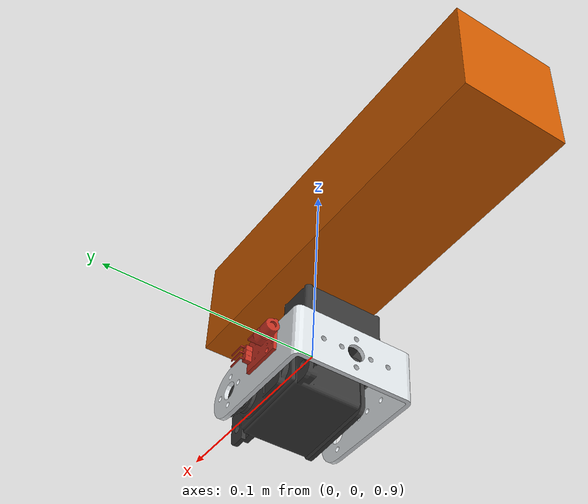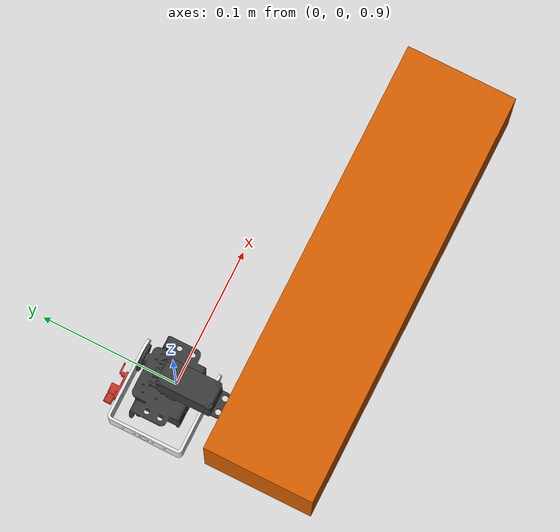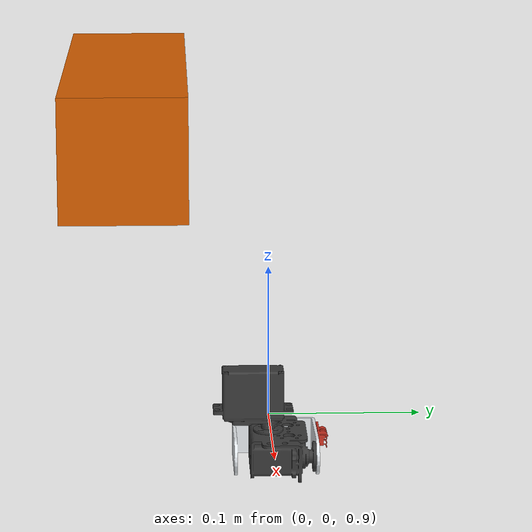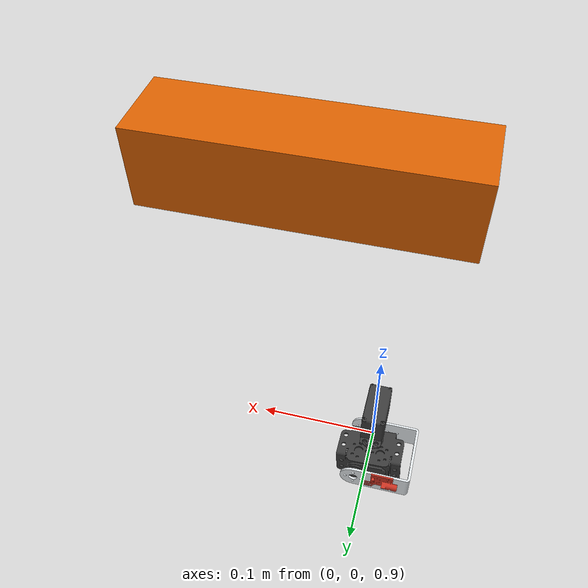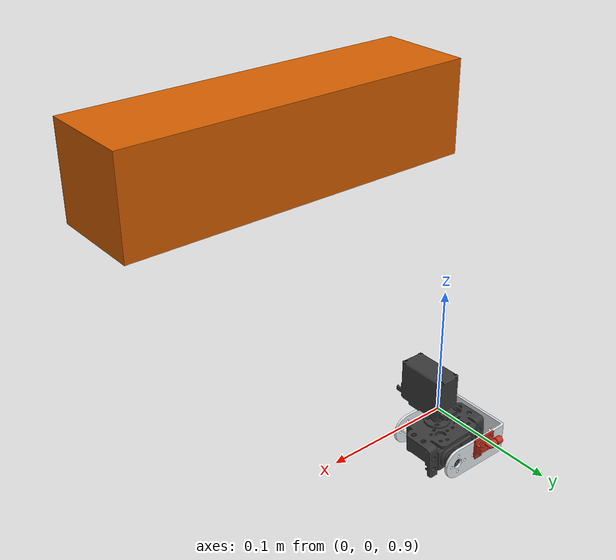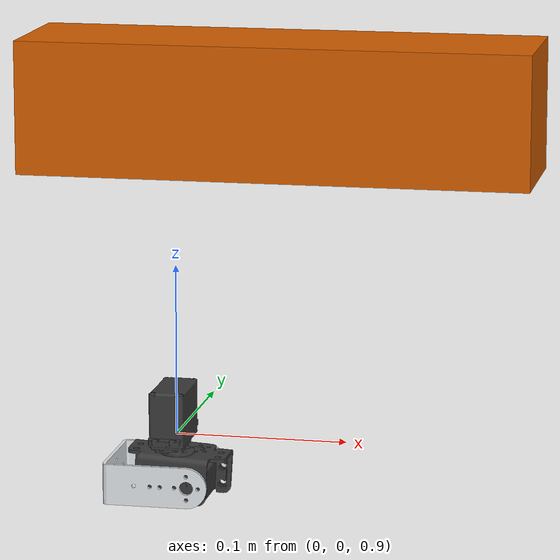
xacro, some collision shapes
<?xml version="1.0"?>
<robot xmlns:xacro="http://wiki.ros.org/xacro" name="my_integ">

  <!-- Include the kinect camera URDF file -->
  <xacro:include filename="kinect.xacro"/>

  <!-- Include the treatement equip URDF file -->
  <xacro:include filename="treatement_equip.xacro"/>

  <!-- Define the position of the equip with respect to the camera -->

  <xacro:kinect xyz="0.08 0.09 -0.18" rpy="0 3.141592653589793 -1.57079632679" parent_frame="base_link" />

</robot>

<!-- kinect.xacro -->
<robot xmlns:xi="http://www.w3.org/2001/XInclude"
    xmlns:gazebo="http://playerstage.sourceforge.net/gazebo/xmlschema/#gz"
    xmlns:model="http://playerstage.sourceforge.net/gazebo/xmlschema/#model"
    xmlns:sensor="http://playerstage.sourceforge.net/gazebo/xmlschema/#sensor"
    xmlns:body="http://playerstage.sourceforge.net/gazebo/xmlschema/#body"
    xmlns:geom="http://playerstage.sourceforge.net/gazebo/xmlschema/#geom"
    xmlns:joint="http://playerstage.sourceforge.net/gazebo/xmlschema/#joint"
    xmlns:controller="http://playerstage.sourceforge.net/gazebo/xmlschema/#controller"
    xmlns:interface="http://playerstage.sourceforge.net/gazebo/xmlschema/#interface"
    xmlns:rendering="http://playerstage.sourceforge.net/gazebo/xmlschema/#rendering"
    xmlns:renderable="http://playerstage.sourceforge.net/gazebo/xmlschema/#renderable"
    xmlns:physics="http://playerstage.sourceforge.net/gazebo/xmlschema/#physics"
    xmlns:xacro="http://ros.org/wiki/xacro">

  <!-- math constants -->
  <xacro:property name="M_PI" value="3.1415926535897931" />
  <xacro:macro name="kinect" params="xyz rpy parent_frame" >

  <joint name="base_camera_joint" type="fixed">
    <origin xyz="${xyz}" rpy="${rpy}" />
    <parent link="${parent_frame}" />
    <origin xyz="0 0 0" rpy="0 0 0" />
    <child link="camera_link" />
  </joint>

  <link name="camera_link">
    <inertial>
      <mass value="0.01" />
      <origin xyz="0 0 0"/>
      <inertia ixx="0.001" ixy="0.0" ixz="0.0"
        iyy="0.001" iyz="0.0"
        izz="0.001" />
    </inertial>

    <visual>
      <origin xyz=" 0 0 0 " rpy="0 0 1.5707963267948966" />
      <geometry>
        <mesh filename="package://treatement_cv/meshes/kinect.dae"/>
      </geometry>
    </visual>

    <collision>
      <origin xyz="0.0 0.0 0.0" rpy="0 0 0" />
      <geometry>
        <box size="0.0730 .2760 0.0720"/>
      </geometry>
    </collision>

  </link>

  <joint name="camera_depth_joint" type="fixed">
    <origin xyz="0 0.011 0" rrpy="0 0 0"/>
    <parent link="camera_link" />
    <child link="camera_depth_frame" />
  </joint>

  <link name="camera_depth_frame">
    <inertial>
      <mass value="0.01" />
      <origin xyz="0 0 0"/>
      <inertia ixx="0.001" ixy="0.0" ixz="0.0"
        iyy="0.001" iyz="0.0"
        izz="0.001" />
    </inertial>
  </link>

  <joint name="camera_depth_optical_joint" type="fixed">
    <origin xyz="0 0 0" rpy="${-M_PI/2} 0 ${-M_PI/2}" />
    <parent link="camera_depth_frame" />
    <child link="camera_depth_optical_frame" />
  </joint>

  <link name="camera_depth_optical_frame">
    <inertial>
      <mass value="0.001" />
      <origin xyz="0 0 0"/>
      <inertia ixx="0.0001" ixy="0.0" ixz="0.0"
        iyy="0.0001" iyz="0.0"
        izz="0.0001" />
    </inertial>
  </link>

  <joint name="camera_rgb_joint" type="fixed">
    <origin xyz="0 -0.012 0" rpy="0 0 0" />
    <parent link="camera_link" />
    <child link="camera_rgb_frame" />
  </joint>

  <link name="camera_rgb_frame">
    <inertial>
      <mass value="0.001" />
      <origin xyz="0 0 0"/>
      <inertia ixx="0.0001" ixy="0.0" ixz="0.0"
        iyy="0.0001" iyz="0.0"
        izz="0.0001" />
    </inertial>
  </link>

  <joint name="camera_rgb_optical_joint" type="fixed">
    <origin xyz="0 0 0" rpy="${-M_PI/2} 0 ${-M_PI/2}" />
    <parent link="camera_rgb_frame" />
    <child link="camera_rgb_optical_frame" />
  </joint>

  <link name="camera_rgb_optical_frame">
    <inertial>
      <mass value="0.001" />
      <origin xyz="0 0 0"/>
      <inertia ixx="0.0001" ixy="0.0" ixz="0.0"
        iyy="0.0001" iyz="0.0"
        izz="0.0001" />
    </inertial>
  </link>

</xacro:macro>

</robot>

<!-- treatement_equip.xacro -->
<robot xmlns:xacro="http://wiki.ros.org/xacro" name="treatement_equip">

  <link name="base_footprint"/>

  <link name="base_link">
    <inertial>
        <origin
          xyz="-0.00394141808918595 0.0171036303382102 0.0547408845032822"
          rpy="0 0 0" />
        <mass
          value="0.0294734098444175" />
        <inertia
          ixx="4.76394404449093E-06"
          ixy="-2.79739453844788E-13"
          ixz="-1.36431165613198E-13"
          iyy="4.91040634718246E-06"
          iyz="-1.92691774861277E-08"
          izz="1.70457014400278E-06" />
    </inertial>
    <visual>
        <origin
          xyz="0.0042 0.0645 0.0"
          rpy="0 0 0" />
        <geometry>
          <mesh
            filename="package://treatement_cv/meshes/base_link.STL" />
        </geometry>
        <material
          name="">
          <color
            rgba="0.227450980392157 0.227450980392157 0.227450980392157 1" />
        </material>
    </visual>
    <collision>
        <origin
          xyz="0 0 0"
          rpy="0 0 0" />
        <geometry>
          <mesh
            filename="package://treatement_cv/meshes/base_link.STL" />
        </geometry>
    </collision>
  </link>

  <joint name="base_footprint_to_base_joint" type="fixed">
    <origin
      xyz="0.0 0.0 0.93"
      rpy="0 3.141592653589793 3.141592653589793" />
    <parent
      link="base_footprint" />
    <child
      link="base_link" />
  </joint>

  <link name="shoulder_link">
    <inertial>
        <origin
          xyz="0.000437359115628169 0.0120183767154998 0.0051127992025653"
          rpy="0 0 0.06045" />
        <mass
          value="0.0461971155642295" />
        <inertia
          ixx="5.62085958159556E-06"
          ixy="-1.35468421184193E-13"
          ixz="-1.92691846480155E-08"
          iyy="1.18684212659114E-05"
          iyz="5.35655089902047E-07"
          izz="1.03961311052542E-05" />
    </inertial>
    <visual>
        <origin
          xyz="0 0 0"
          rpy="0 0 0.06045" />
        <geometry>
          <mesh
            filename="package://treatement_cv/meshes/shoulder_link.STL" />
        </geometry>
        <material
          name="">
          <color
            rgba="0.227450980392157 0.227450980392157 0.227450980392157 1" />
        </material>
    </visual>
    <collision>
        <origin
          xyz="0 0 0"
          rpy="0 0 0.06045" />
        <geometry>
          <mesh
            filename="package://treatement_cv/meshes/shoulder_link.STL" />
        </geometry>
    </collision>
  </link>

  <joint name="base_to_shoulder_joint" type="continuous">
    <origin
      xyz="0.0 0.0 0.041446"
      rpy="1.5707963267949 0.0 0.0" />
    <parent
      link="base_link" />
    <child
      link="shoulder_link" />
    <axis
      xyz="0 1 0" />
  </joint>

  <link name="holder_link">
    <inertial>
      <origin
        xyz="-0.00506999999999978 -0.0294559964301713 6.93889390390723E-18"
        rpy="0 0 0" />
      <mass
        value="0.0213372016014766" />
      <inertia
        ixx="8.8721565760487E-06"
        ixy="-1.74171149779166E-20"
        ixz="3.13253297973832E-21"
        iyy="1.3390588906091E-05"
        iyz="-3.12105584873914E-21"
        izz="2.01646770189564E-05" />
    </inertial>
    <visual>
      <origin
        xyz="0 0 0"
        rpy="0 0 0" />
      <geometry>
        <mesh
          filename="package://treatement_cv/meshes/holder_link.STL" />
      </geometry>
      <material
        name="">
        <color
          rgba="0.894117647058823 0.913725490196078 0.929411764705882 1" />
      </material>
    </visual>
    <collision>
      <origin
        xyz="0 0 0"
        rpy="0 0 0" />
      <geometry>
        <mesh
          filename="package://treatement_cv/meshes/holder_link.STL" />
      </geometry>
    </collision>
  </link>

  <joint name="shoulder_to_holder_joint" type="continuous">
    <origin
      xyz="0.0103499999999603 0.0147700000000001 0"
      rpy="1.5707963267949 1.5707963267949 0" />
    <parent
      link="shoulder_link" />
    <child
      link="holder_link" />
    <axis
      xyz="1 0 0" />
  </joint>

  <link name="laser_link">
    <inertial>
      <origin
        xyz="0 0.00238155032891173 -0.0023930370283283"
        rpy="0 3.141592653589793 0" />
      <mass
        value="0.000771725491366377" />
      <inertia
        ixx="4.14600743405254E-08"
        ixy="4.74659499937655E-24"
        ixz="-1.3414623869494E-23"
        iyy="4.68865669540154E-08"
        iyz="5.05200453885892E-09"
        izz="1.2322327296653E-08" />
    </inertial>
    <visual>
      <origin
        xyz="0 0 0"
        rpy="0 3.141592653589793 0" />
      <geometry>
        <mesh
          filename="package://treatement_cv/meshes/laser_link.STL" />
      </geometry>
      <material
        name="">
        <color
          rgba="0.792156862745098 0.19607843137255 0.13333333 1" />
      </material>
    </visual>
    <collision>
      <origin
        xyz="0 0 0"
        rpy="0 3.141592653589793 0" />
      <geometry>
        <mesh
          filename="package://treatement_cv/meshes/laser_link.STL" />
      </geometry>
    </collision>
  </link>

  <joint name="holder_to_laser_joint" type="fixed">
    <origin
      xyz="-0.0330700000000001 -0.0259 0.00550000000000014"
      rpy="1.5707963267949 -1.5707963267949 0" />
    <parent
      link="holder_link" />
    <child
      link="laser_link" />
    <axis
      xyz="0 0 0" />
  </joint>
</robot>
